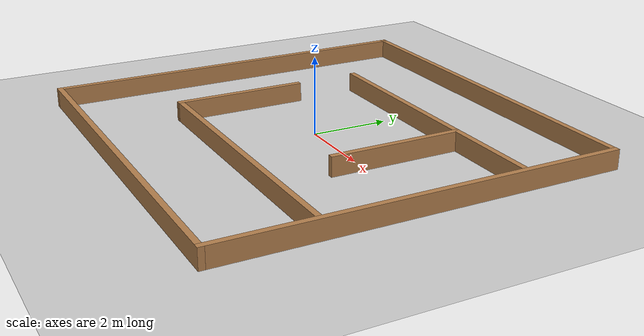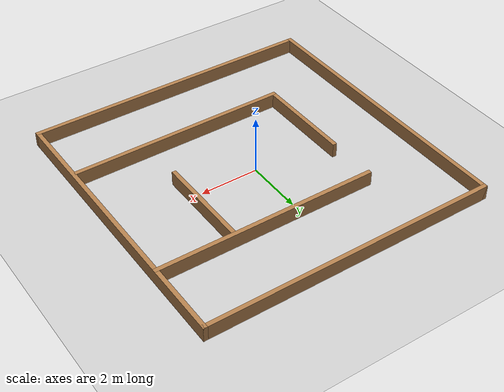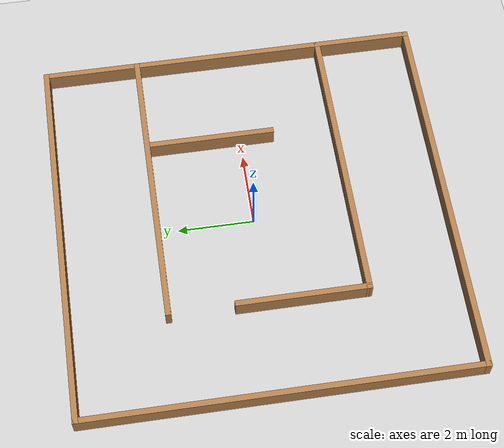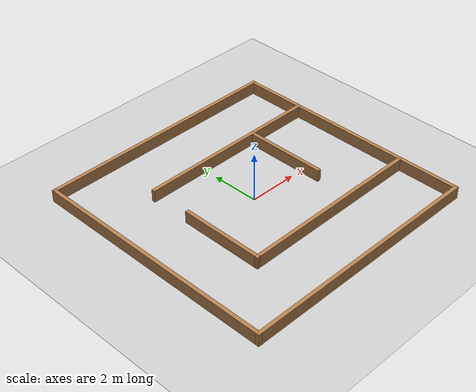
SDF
<sdf version="1.7">
 <world name="default">
  <light name="sun" type="directional">
   <pose>0 0 10 0 -0 0</pose>
   <diffuse>0.8 0.8 0.8 1</diffuse>
   <specular>0.2 0.2 0.2 1</specular>
   <attenuation>
    <range>1000</range>
    <constant>0.9</constant>
    <linear>0.01</linear>
    <quadratic>0.001</quadratic>
   </attenuation>
   <direction>-0.5 0.1 -0.9</direction>
   <spot><inner_angle>0</inner_angle><outer_angle>0</outer_angle><falloff>0</falloff></spot>
  </light>
  <model name="ground_plane">
   <static>1</static>
   <link name="link">
    <collision name="collision">
     <geometry><plane><normal>0 0 1</normal><size>100 100</size></plane></geometry>
     <surface>
      <contact><collide_bitmask>65535</collide_bitmask></contact>
      <friction><ode><mu>100</mu><mu2>50</mu2></ode></friction>
     </surface>
    </collision>
    <visual name="visual">
     <cast_shadows>0</cast_shadows>
     <geometry><plane><normal>0 0 1</normal><size>100 100</size></plane></geometry>
     <material>
      <script><uri>file://media/materials/scripts/gazebo.material</uri><name>Gazebo/Grey</name></script>
     </material>
    </visual>
   </link>
  </model>
  <gravity>0 0 -9.8</gravity>
  <magnetic_field>6e-06 2.3e-05 -4.2e-05</magnetic_field>
  <atmosphere type="adiabatic"/>
  <physics type="ode">
   <max_step_size>0.001</max_step_size>
   <real_time_factor>1</real_time_factor>
   <real_time_update_rate>1000</real_time_update_rate>
  </physics>
  <scene><ambient>0.4 0.4 0.4 1</ambient><background>0.7 0.7 0.7 1</background><shadows>1</shadows></scene>
  <audio><device>default</device></audio>
  <spherical_coordinates>
   <surface_model>EARTH_WGS84</surface_model>
   <latitude_deg>0</latitude_deg>
   <longitude_deg>0</longitude_deg>
   <elevation>0</elevation>
   <heading_deg>0</heading_deg>
  </spherical_coordinates>
  <model name="rvbot_building">
   <pose>0.049 -0.011 0 0 -0 0</pose>
   <link name="Wall_10">
    <collision name="Wall_10_Collision">
     <geometry><box><size>7.75 0.15 0.5</size></box></geometry>
     <pose>0 0 0.25 0 -0 0</pose>
    </collision>
    <visual name="Wall_10_Visual">
     <pose>0 0 0.25 0 -0 0</pose>
     <geometry><box><size>7.75 0.15 0.5</size></box></geometry>
     <material>
      <script><uri>file://media/materials/scripts/gazebo.material</uri><name>Gazebo/Wood</name></script>
      <ambient>1 1 1 1</ambient>
     </material>
     <meta><layer>0</layer></meta>
    </visual>
    <pose>1.249 2.537 0 0 -0 0</pose>
   </link>
   <link name="Wall_12">
    <collision name="Wall_12_Collision">
     <geometry><box><size>3.5 0.15 0.5</size></box></geometry>
     <pose>0 0 0.25 0 -0 0</pose>
    </collision>
    <visual name="Wall_12_Visual">
     <pose>0 0 0.25 0 -0 0</pose>
     <geometry><box><size>3.5 0.15 0.5</size></box></geometry>
     <material>
      <script><uri>file://media/materials/scripts/gazebo.material</uri><name>Gazebo/Wood</name></script>
      <ambient>1 1 1 1</ambient>
     </material>
     <meta><layer>0</layer></meta>
    </visual>
    <pose>2.415 0.857 0 0 -0 -1.5708</pose>
   </link>
   <link name="Wall_2">
    <collision name="Wall_2_Collision">
     <geometry><box><size>10.25 0.15 0.5</size></box></geometry>
     <pose>0 0 0.25 0 -0 0</pose>
    </collision>
    <visual name="Wall_2_Visual">
     <pose>0 0 0.25 0 -0 0</pose>
     <geometry><box><size>10.25 0.15 0.5</size></box></geometry>
     <material>
      <script><uri>file://media/materials/scripts/gazebo.material</uri><name>Gazebo/Wood</name></script>
      <ambient>1 1 1 1</ambient>
     </material>
     <meta><layer>0</layer></meta>
    </visual>
    <pose>-0 5.05 0 0 -0 0</pose>
   </link>
   <link name="Wall_3">
    <collision name="Wall_3_Collision">
     <geometry><box><size>10.25 0.15 0.5</size></box></geometry>
     <pose>0 0 0.25 0 -0 0</pose>
    </collision>
    <visual name="Wall_3_Visual">
     <pose>0 0 0.25 0 -0 0</pose>
     <geometry><box><size>10.25 0.15 0.5</size></box></geometry>
     <material>
      <script><uri>file://media/materials/scripts/gazebo.material</uri><name>Gazebo/Wood</name></script>
      <ambient>1 1 1 1</ambient>
     </material>
     <meta><layer>0</layer></meta>
    </visual>
    <pose>5.05 0 0 0 -0 -1.5708</pose>
   </link>
   <link name="Wall_4">
    <collision name="Wall_4_Collision">
     <geometry><box><size>10.25 0.15 0.5</size></box></geometry>
     <pose>0 0 0.25 0 -0 0</pose>
    </collision>
    <visual name="Wall_4_Visual">
     <pose>0 0 0.25 0 -0 0</pose>
     <geometry><box><size>10.25 0.15 0.5</size></box></geometry>
     <material>
      <script><uri>file://media/materials/scripts/gazebo.material</uri><name>Gazebo/Wood</name></script>
      <ambient>1 1 1 1</ambient>
     </material>
     <meta><layer>0</layer></meta>
    </visual>
    <pose>-0 -5.05 0 0 -0 3.14159</pose>
   </link>
   <link name="Wall_5">
    <collision name="Wall_5_Collision">
     <geometry><box><size>10.25 0.15 0.5</size></box></geometry>
     <pose>0 0 0.25 0 -0 0</pose>
    </collision>
    <visual name="Wall_5_Visual">
     <pose>0 0 0.25 0 -0 0</pose>
     <geometry><box><size>10.25 0.15 0.5</size></box></geometry>
     <material>
      <script><uri>file://media/materials/scripts/gazebo.material</uri><name>Gazebo/Wood</name></script>
      <ambient>1 1 1 1</ambient>
     </material>
     <meta><layer>0</layer></meta>
    </visual>
    <pose>-5.05 0 0 0 -0 1.5708</pose>
   </link>
   <link name="Wall_7">
    <collision name="Wall_7_Collision">
     <geometry><box><size>7.75 0.15 0.5</size></box></geometry>
     <pose>0 0 0.25 0 -0 0</pose>
    </collision>
    <visual name="Wall_7_Visual">
     <pose>0 0 0.25 0 -0 0</pose>
     <geometry><box><size>7.75 0.15 0.5</size></box></geometry>
     <material>
      <script><uri>file://media/materials/scripts/gazebo.material</uri><name>Gazebo/Wood</name></script>
      <ambient>1 1 1 1</ambient>
     </material>
     <meta><layer>0</layer></meta>
    </visual>
    <pose>1.246 -2.554 0 0 -0 -3.13633</pose>
   </link>
   <link name="Wall_8">
    <collision name="Wall_8_Collision">
     <geometry><box><size>3.5 0.15 0.5</size></box></geometry>
     <pose>0 0 0.25 0 -0 0</pose>
    </collision>
    <visual name="Wall_8_Visual">
     <pose>0 0 0.25 0 -0 0</pose>
     <geometry><box><size>3.5 0.15 0.5</size></box></geometry>
     <material>
      <script><uri>file://media/materials/scripts/gazebo.material</uri><name>Gazebo/Wood</name></script>
      <ambient>1 1 1 1</ambient>
     </material>
     <meta><layer>0</layer></meta>
    </visual>
    <pose>-2.554 -0.899 0 0 -0 1.5708</pose>
   </link>
   <static>1</static>
  </model>
 </world>
</sdf>
